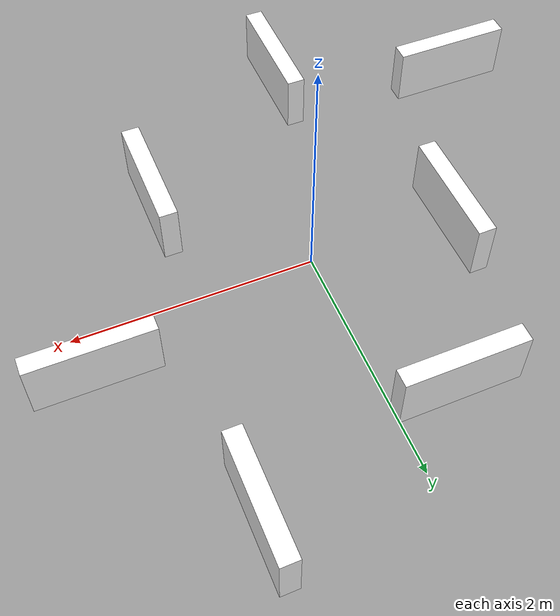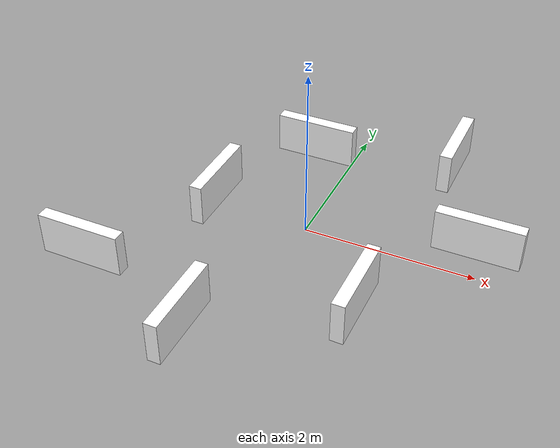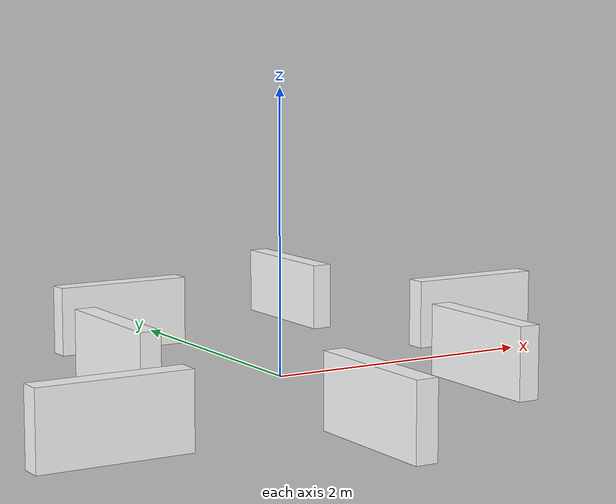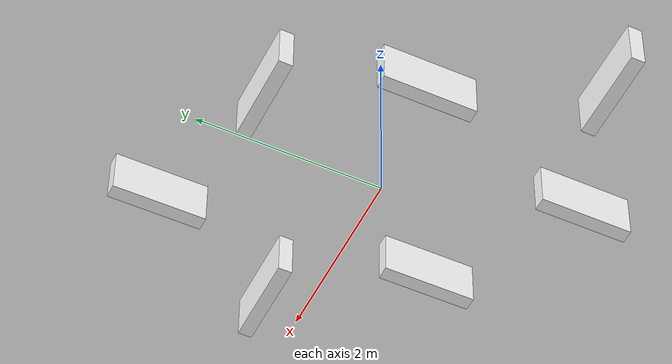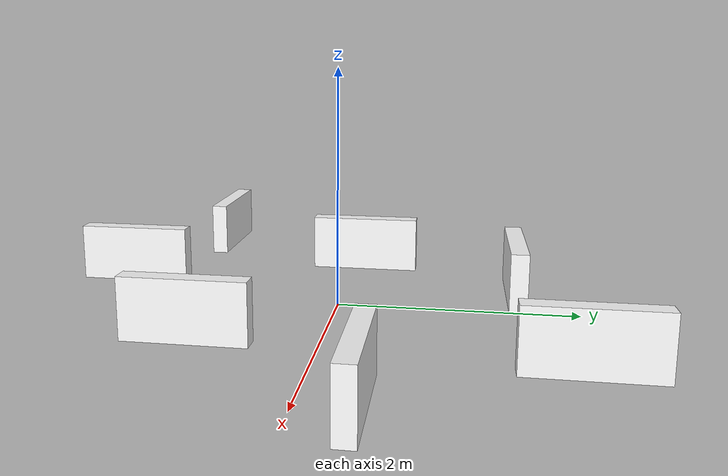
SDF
<?xml version='1.0'?>
<sdf version='1.8'>
  <model name='inner_walls'>
    <pose>0 0 0 0 0 0</pose>
    <static>true</static>
    <link name='inner_wall_1'>
      <pose>-2.0 -1.5 0.25 0 0 0</pose>
      <collision name='inner_wall_1_collision'>
        <geometry>
          <box>
            <size>1 0.15 0.5</size>
          </box>
        </geometry>
      </collision>
      <visual name='inner_wall_visual'>
        <geometry>
          <box>
            <size>1 0.15 0.5</size>
          </box>
        </geometry>
        <material>
          <pbr>
            <metal>
              <albedo_map>textures/wood.png</albedo_map>
            </metal>
          </pbr>
          <ambient>1 1 1 1</ambient>
          <diffuse>1 1 1 1</diffuse>
          <specular>0.2 0.2 0.2 1</specular>
          <emissive>0 0 0 1</emissive>
        </material>
      </visual>
    </link>

    <link name='inner_wall_2'>
      <pose>-0.5 -2.0 0.25 0 0 -1.5708</pose>
      <collision name='inner_wall_2_collision'>
        <geometry>
          <box>
            <size>1 0.15 0.5</size>
          </box>
        </geometry>
      </collision>
      <visual name='inner_wall_2_visual'>
        <geometry>
          <box>
            <size>1 0.15 0.5</size>
          </box>
        </geometry>
        <material>
          <pbr>
            <metal>
              <albedo_map>textures/wood.png</albedo_map>
            </metal>
          </pbr>
          <ambient>1 1 1 1</ambient>
          <diffuse>1 1 1 1</diffuse>
          <specular>0.2 0.2 0.2 1</specular>
          <emissive>0 0 0 1</emissive>
        </material>
      </visual>
    </link>

    <link name='inner_wall_3'>
      <pose>1.0 -1.0 0.25 0 0 1.5708</pose>
      <collision name='inner_wall_3_collision'>
        <geometry>
          <box>
            <size>1 0.15 0.5</size>
          </box>
        </geometry>
      </collision>
      <visual name='inner_wall_3_visual'>
        <geometry>
          <box>
            <size>1 0.15 0.5</size>
          </box>
        </geometry>
        <material>
          <pbr>
            <metal>
              <albedo_map>textures/wood.png</albedo_map>
            </metal>
          </pbr>
          <ambient>1 1 1 1</ambient>
          <diffuse>1 1 1 1</diffuse>
          <specular>0.2 0.2 0.2 1</specular>
          <emissive>0 0 0 1</emissive>
        </material>
      </visual>
    </link>

    <link name='inner_wall_4'>
      <pose>1.2 1.9 0.25 0 0 -1.5708</pose>
      <collision name='inner_wall_4_collision'>
        <geometry>
          <box>
            <size>1 0.15 0.5</size>
          </box>
        </geometry>
      </collision>
      <visual name='inner_wall_4_visual'>
        <geometry>
          <box>
            <size>1 0.15 0.5</size>
          </box>
        </geometry>
        <material>
          <pbr>
            <metal>
              <albedo_map>textures/wood.png</albedo_map>
            </metal>
          </pbr>
          <ambient>1 1 1 1</ambient>
          <diffuse>1 1 1 1</diffuse>
          <specular>0.2 0.2 0.2 1</specular>
          <emissive>0 0 0 1</emissive>
        </material>
      </visual>
    </link>

    <link name='inner_wall_5'>
      <pose>1.9 0.4 0.25 0 0 0</pose>
      <collision name='inner_wall_5_collision'>
        <geometry>
          <box>
            <size>1 0.15 0.5</size>
          </box>
        </geometry>
      </collision>
      <visual name='inner_wall_5_visual'>
        <geometry>
          <box>
            <size>1 0.15 0.5</size>
          </box>
        </geometry>
        <material>
          <pbr>
            <metal>
              <albedo_map>textures/wood.png</albedo_map>
            </metal>
          </pbr>
          <ambient>1 1 1 1</ambient>
          <diffuse>1 1 1 1</diffuse>
          <specular>0.2 0.2 0.2 1</specular>
          <emissive>0 0 0 1</emissive>
        </material>
      </visual>
    </link>

    <link name='inner_wall_6'>
      <pose>-0.5 1.5 0.25 0 0 0</pose>
      <collision name='inner_wall_6_collision'>
        <geometry>
          <box>
            <size>1 0.15 0.5</size>
          </box>
        </geometry>
      </collision>
      <visual name='inner_wall_6_visual'>
        <geometry>
          <box>
            <size>1 0.15 0.5</size>
          </box>
        </geometry>
        <material>
          <pbr>
            <metal>
              <albedo_map>textures/wood.png</albedo_map>
            </metal>
          </pbr>
          <ambient>1 1 1 1</ambient>
          <diffuse>1 1 1 1</diffuse>
          <specular>0.2 0.2 0.2 1</specular>
          <emissive>0 0 0 1</emissive>
        </material>
      </visual>
    </link>

    <link name='inner_wall_7'>
      <pose>-1.2 0.092 0.25 0 0 -1.5708</pose>
      <collision name='inner_wall_7_collision'>
        <geometry>
          <box>
            <size>1 0.15 0.5</size>
          </box>
        </geometry>
      </collision>
      <visual name='inner_wall_7_visual'>
        <geometry>
          <box>
            <size>1 0.15 0.5</size>
          </box>
        </geometry>
        <material>
          <pbr>
            <metal>
              <albedo_map>textures/wood.png</albedo_map>
            </metal>
          </pbr>
          <ambient>1 1 1 1</ambient>
          <diffuse>1 1 1 1</diffuse>
          <specular>0.2 0.2 0.2 1</specular>
          <emissive>0 0 0 1</emissive>
        </material>
      </visual>
    </link>

  </model>
</sdf>
